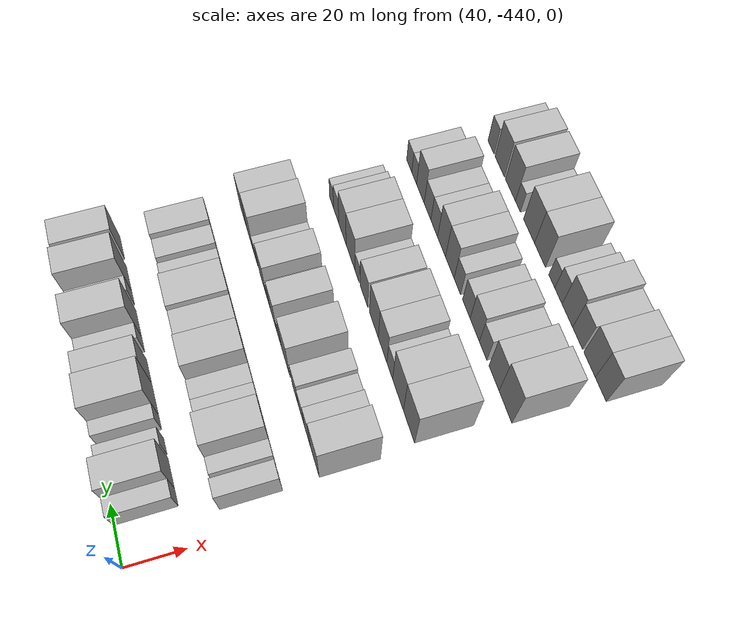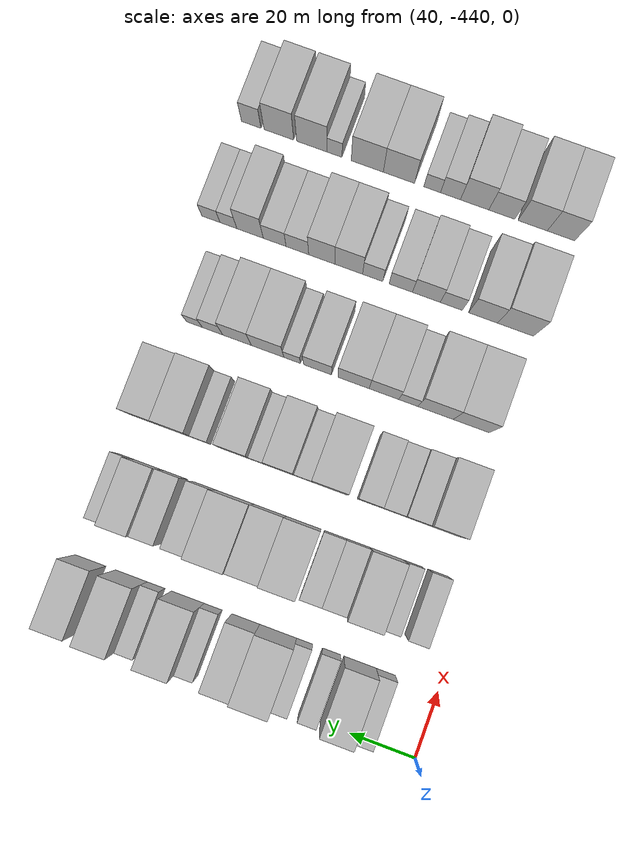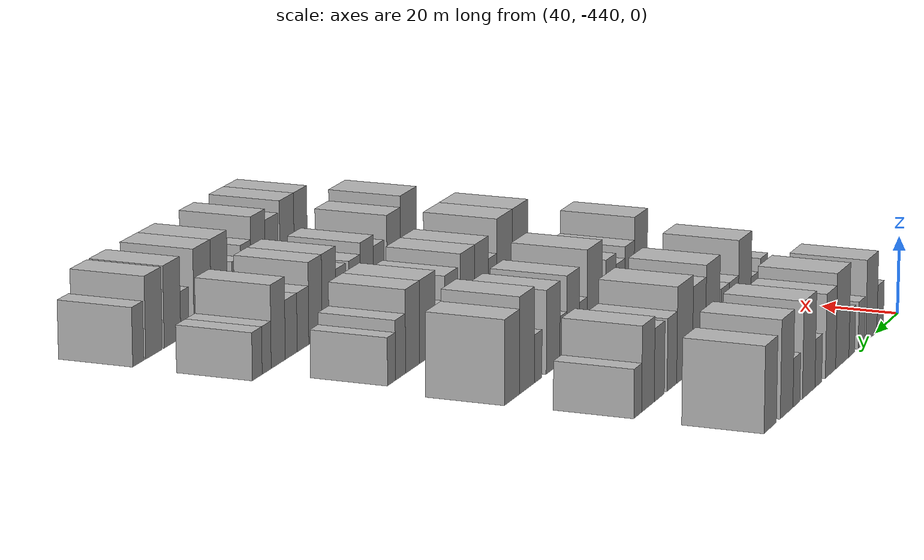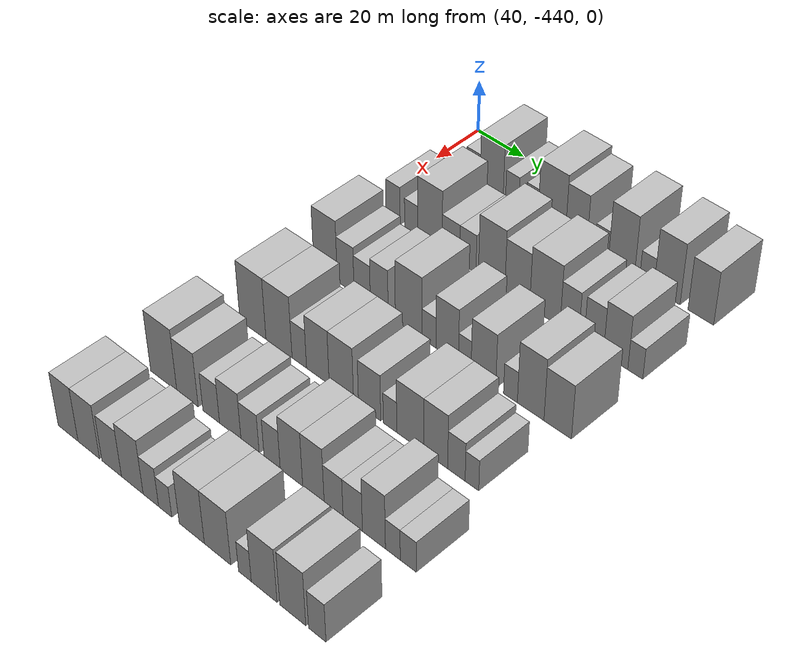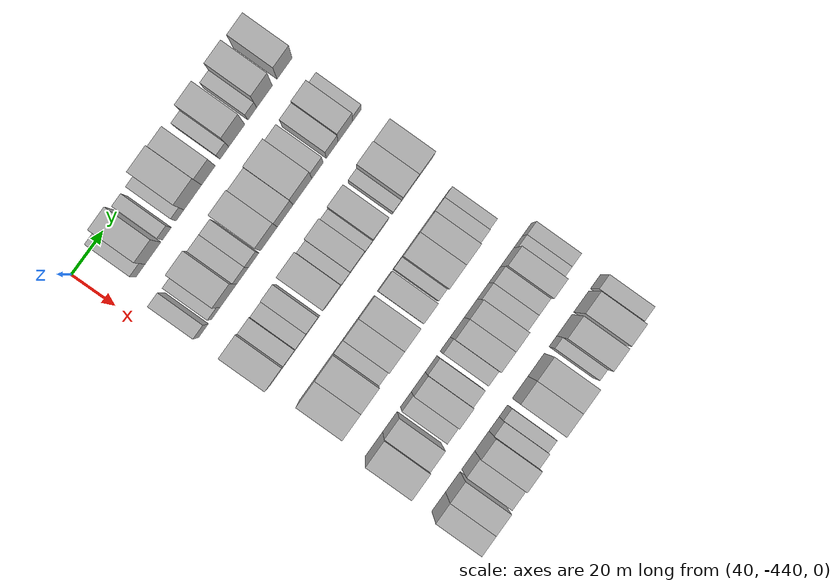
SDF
<sdf version="1.6">
 <world name="default">
  <model name="building_13">
   <static>1</static>
   <pose>50.0000 -423.7667 0 0.000000 0.000000 0.000000</pose>
   <link name="link">
    <pose>0 0 6.00 0 0 0</pose>
    <collision name="collision"><geometry><box><size>20.0000 5.8594 12.0000</size></box></geometry></collision>
    <visual name="visual">
     <cast_shadows>0</cast_shadows>
     <geometry><box><size>20.0000 5.8594 12.0000</size></box></geometry>
     <material>
      <script>
       <uri>model://HANNAS_wall/materials/scripts</uri>
       <uri>model://HANNAS_wall/materials/textures</uri>
       <name>vrc/HANNAS_wall</name>
      </script>
     </material>
    </visual>
   </link>
  </model>
  <model name="building_14">
   <static>1</static>
   <pose>50.0000 -415.8251 0 0.000000 0.000000 0.000000</pose>
   <link name="link">
    <pose>0 0 10.50 0 0 0</pose>
    <collision name="collision"><geometry><box><size>20.0000 10.0237 21.0000</size></box></geometry></collision>
    <visual name="visual">
     <cast_shadows>0</cast_shadows>
     <geometry><box><size>20.0000 10.0237 21.0000</size></box></geometry>
     <material>
      <script>
       <uri>model://HANNAS_wall/materials/scripts</uri>
       <uri>model://HANNAS_wall/materials/textures</uri>
       <name>vrc/HANNAS_wall</name>
      </script>
     </material>
    </visual>
   </link>
  </model>
  <model name="building_15">
   <static>1</static>
   <pose>50.0000 -406.9831 0 0.000000 0.000000 0.000000</pose>
   <link name="link">
    <pose>0 0 6.00 0 0 0</pose>
    <collision name="collision"><geometry><box><size>20.0000 5.6603 12.0000</size></box></geometry></collision>
    <visual name="visual">
     <cast_shadows>0</cast_shadows>
     <geometry><box><size>20.0000 5.6603 12.0000</size></box></geometry>
     <material>
      <script>
       <uri>model://HANNAS_wall/materials/scripts</uri>
       <uri>model://HANNAS_wall/materials/textures</uri>
       <name>vrc/HANNAS_wall</name>
      </script>
     </material>
    </visual>
   </link>
  </model>
  <model name="building_16">
   <static>1</static>
   <pose>50.0000 -398.6323 0 0.000000 0.000000 0.000000</pose>
   <link name="link">
    <pose>0 0 6.00 0 0 0</pose>
    <collision name="collision"><geometry><box><size>20.0000 5.0413 12.0000</size></box></geometry></collision>
    <visual name="visual">
     <cast_shadows>0</cast_shadows>
     <geometry><box><size>20.0000 5.0413 12.0000</size></box></geometry>
     <material>
      <script>
       <uri>model://HANNAS_wall/materials/scripts</uri>
       <uri>model://HANNAS_wall/materials/textures</uri>
       <name>vrc/HANNAS_wall</name>
      </script>
     </material>
    </visual>
   </link>
  </model>
  <model name="building_17">
   <static>1</static>
   <pose>50.0000 -390.4212 0 0.000000 0.000000 0.000000</pose>
   <link name="link">
    <pose>0 0 12.00 0 0 0</pose>
    <collision name="collision"><geometry><box><size>20.0000 11.3807 24.0000</size></box></geometry></collision>
    <visual name="visual">
     <cast_shadows>0</cast_shadows>
     <geometry><box><size>20.0000 11.3807 24.0000</size></box></geometry>
     <material>
      <script>
       <uri>model://HANNAS_wall/materials/scripts</uri>
       <uri>model://HANNAS_wall/materials/textures</uri>
       <name>vrc/HANNAS_wall</name>
      </script>
     </material>
    </visual>
   </link>
  </model>
  <model name="building_18">
   <static>1</static>
   <pose>50.0000 -380.3764 0 0.000000 0.000000 0.000000</pose>
   <link name="link">
    <pose>0 0 10.50 0 0 0</pose>
    <collision name="collision"><geometry><box><size>20.0000 8.7089 21.0000</size></box></geometry></collision>
    <visual name="visual">
     <cast_shadows>0</cast_shadows>
     <geometry><box><size>20.0000 8.7089 21.0000</size></box></geometry>
     <material>
      <script>
       <uri>model://HANNAS_wall/materials/scripts</uri>
       <uri>model://HANNAS_wall/materials/textures</uri>
       <name>vrc/HANNAS_wall</name>
      </script>
     </material>
    </visual>
   </link>
  </model>
  <model name="building_19">
   <static>1</static>
   <pose>50.0000 -370.2138 0 0.000000 0.000000 0.000000</pose>
   <link name="link">
    <pose>0 0 6.00 0 0 0</pose>
    <collision name="collision"><geometry><box><size>20.0000 5.6164 12.0000</size></box></geometry></collision>
    <visual name="visual">
     <cast_shadows>0</cast_shadows>
     <geometry><box><size>20.0000 5.6164 12.0000</size></box></geometry>
     <material>
      <script>
       <uri>model://HANNAS_wall/materials/scripts</uri>
       <uri>model://HANNAS_wall/materials/textures</uri>
       <name>vrc/HANNAS_wall</name>
      </script>
     </material>
    </visual>
   </link>
  </model>
  <model name="building_20">
   <static>1</static>
   <pose>50.0000 -362.2607 0 0.000000 0.000000 0.000000</pose>
   <link name="link">
    <pose>0 0 12.00 0 0 0</pose>
    <collision name="collision"><geometry><box><size>20.0000 10.2897 24.0000</size></box></geometry></collision>
    <visual name="visual">
     <cast_shadows>0</cast_shadows>
     <geometry><box><size>20.0000 10.2897 24.0000</size></box></geometry>
     <material>
      <script>
       <uri>model://HANNAS_wall/materials/scripts</uri>
       <uri>model://HANNAS_wall/materials/textures</uri>
       <name>vrc/HANNAS_wall</name>
      </script>
     </material>
    </visual>
   </link>
  </model>
  <model name="building_21">
   <static>1</static>
   <pose>50.0000 -352.3181 0 0.000000 0.000000 0.000000</pose>
   <link name="link">
    <pose>0 0 6.00 0 0 0</pose>
    <collision name="collision"><geometry><box><size>20.0000 5.5954 12.0000</size></box></geometry></collision>
    <visual name="visual">
     <cast_shadows>0</cast_shadows>
     <geometry><box><size>20.0000 5.5954 12.0000</size></box></geometry>
     <material>
      <script>
       <uri>model://HANNAS_wall/materials/scripts</uri>
       <uri>model://HANNAS_wall/materials/textures</uri>
       <name>vrc/HANNAS_wall</name>
      </script>
     </material>
    </visual>
   </link>
  </model>
  <model name="building_22">
   <static>1</static>
   <pose>50.0000 -344.5052 0 0.000000 0.000000 0.000000</pose>
   <link name="link">
    <pose>0 0 12.00 0 0 0</pose>
    <collision name="collision"><geometry><box><size>20.0000 10.0305 24.0000</size></box></geometry></collision>
    <visual name="visual">
     <cast_shadows>0</cast_shadows>
     <geometry><box><size>20.0000 10.0305 24.0000</size></box></geometry>
     <material>
      <script>
       <uri>model://HANNAS_wall/materials/scripts</uri>
       <uri>model://HANNAS_wall/materials/textures</uri>
       <name>vrc/HANNAS_wall</name>
      </script>
     </material>
    </visual>
   </link>
  </model>
  <model name="building_23">
   <static>1</static>
   <pose>50.0000 -331.6770 0 0.000000 0.000000 0.000000</pose>
   <link name="link">
    <pose>0 0 10.50 0 0 0</pose>
    <collision name="collision"><geometry><box><size>20.0000 9.6259 21.0000</size></box></geometry></collision>
    <visual name="visual">
     <cast_shadows>0</cast_shadows>
     <geometry><box><size>20.0000 9.6259 21.0000</size></box></geometry>
     <material>
      <script>
       <uri>model://HANNAS_wall/materials/scripts</uri>
       <uri>model://HANNAS_wall/materials/textures</uri>
       <name>vrc/HANNAS_wall</name>
      </script>
     </material>
    </visual>
   </link>
  </model>
  <model name="building_133">
   <static>1</static>
   <pose>82.0000 -428.3252 0 0.000000 0.000000 0.000000</pose>
   <link name="link">
    <pose>0 0 7.50 0 0 0</pose>
    <collision name="collision"><geometry><box><size>20.0000 6.1451 15.0000</size></box></geometry></collision>
    <visual name="visual">
     <cast_shadows>0</cast_shadows>
     <geometry><box><size>20.0000 6.1451 15.0000</size></box></geometry>
     <material>
      <script>
       <uri>model://HANNAS_wall/materials/scripts</uri>
       <uri>model://HANNAS_wall/materials/textures</uri>
       <name>vrc/HANNAS_wall</name>
      </script>
     </material>
    </visual>
   </link>
  </model>
  <model name="building_134">
   <static>1</static>
   <pose>82.0000 -420.4327 0 0.000000 0.000000 0.000000</pose>
   <link name="link">
    <pose>0 0 6.00 0 0 0</pose>
    <collision name="collision"><geometry><box><size>20.0000 5.6399 12.0000</size></box></geometry></collision>
    <visual name="visual">
     <cast_shadows>0</cast_shadows>
     <geometry><box><size>20.0000 5.6399 12.0000</size></box></geometry>
     <material>
      <script>
       <uri>model://HANNAS_wall/materials/scripts</uri>
       <uri>model://HANNAS_wall/materials/textures</uri>
       <name>vrc/HANNAS_wall</name>
      </script>
     </material>
    </visual>
   </link>
  </model>
  <model name="building_135">
   <static>1</static>
   <pose>82.0000 -412.3763 0 0.000000 0.000000 0.000000</pose>
   <link name="link">
    <pose>0 0 12.00 0 0 0</pose>
    <collision name="collision"><geometry><box><size>20.0000 10.4729 24.0000</size></box></geometry></collision>
    <visual name="visual">
     <cast_shadows>0</cast_shadows>
     <geometry><box><size>20.0000 10.4729 24.0000</size></box></geometry>
     <material>
      <script>
       <uri>model://HANNAS_wall/materials/scripts</uri>
       <uri>model://HANNAS_wall/materials/textures</uri>
       <name>vrc/HANNAS_wall</name>
      </script>
     </material>
    </visual>
   </link>
  </model>
  <model name="building_136">
   <static>1</static>
   <pose>82.0000 -403.4247 0 0.000000 0.000000 0.000000</pose>
   <link name="link">
    <pose>0 0 7.50 0 0 0</pose>
    <collision name="collision"><geometry><box><size>20.0000 7.4302 15.0000</size></box></geometry></collision>
    <visual name="visual">
     <cast_shadows>0</cast_shadows>
     <geometry><box><size>20.0000 7.4302 15.0000</size></box></geometry>
     <material>
      <script>
       <uri>model://HANNAS_wall/materials/scripts</uri>
       <uri>model://HANNAS_wall/materials/textures</uri>
       <name>vrc/HANNAS_wall</name>
      </script>
     </material>
    </visual>
   </link>
  </model>
  <model name="building_137">
   <static>1</static>
   <pose>82.0000 -396.3195 0 0.000000 0.000000 0.000000</pose>
   <link name="link">
    <pose>0 0 7.50 0 0 0</pose>
    <collision name="collision"><geometry><box><size>20.0000 6.7802 15.0000</size></box></geometry></collision>
    <visual name="visual">
     <cast_shadows>0</cast_shadows>
     <geometry><box><size>20.0000 6.7802 15.0000</size></box></geometry>
     <material>
      <script>
       <uri>model://HANNAS_wall/materials/scripts</uri>
       <uri>model://HANNAS_wall/materials/textures</uri>
       <name>vrc/HANNAS_wall</name>
      </script>
     </material>
    </visual>
   </link>
  </model>
  <model name="building_138">
   <static>1</static>
   <pose>82.0000 -386.5137 0 0.000000 0.000000 0.000000</pose>
   <link name="link">
    <pose>0 0 12.00 0 0 0</pose>
    <collision name="collision"><geometry><box><size>20.0000 10.8312 24.0000</size></box></geometry></collision>
    <visual name="visual">
     <cast_shadows>0</cast_shadows>
     <geometry><box><size>20.0000 10.8312 24.0000</size></box></geometry>
     <material>
      <script>
       <uri>model://HANNAS_wall/materials/scripts</uri>
       <uri>model://HANNAS_wall/materials/textures</uri>
       <name>vrc/HANNAS_wall</name>
      </script>
     </material>
    </visual>
   </link>
  </model>
  <model name="building_139">
   <static>1</static>
   <pose>82.0000 -376.0908 0 0.000000 0.000000 0.000000</pose>
   <link name="link">
    <pose>0 0 10.50 0 0 0</pose>
    <collision name="collision"><geometry><box><size>20.0000 10.0147 21.0000</size></box></geometry></collision>
    <visual name="visual">
     <cast_shadows>0</cast_shadows>
     <geometry><box><size>20.0000 10.0147 21.0000</size></box></geometry>
     <material>
      <script>
       <uri>model://HANNAS_wall/materials/scripts</uri>
       <uri>model://HANNAS_wall/materials/textures</uri>
       <name>vrc/HANNAS_wall</name>
      </script>
     </material>
    </visual>
   </link>
  </model>
  <model name="building_140">
   <static>1</static>
   <pose>82.0000 -365.0867 0 0.000000 0.000000 0.000000</pose>
   <link name="link">
    <pose>0 0 12.00 0 0 0</pose>
    <collision name="collision"><geometry><box><size>20.0000 11.9934 24.0000</size></box></geometry></collision>
    <visual name="visual">
     <cast_shadows>0</cast_shadows>
     <geometry><box><size>20.0000 11.9934 24.0000</size></box></geometry>
     <material>
      <script>
       <uri>model://HANNAS_wall/materials/scripts</uri>
       <uri>model://HANNAS_wall/materials/textures</uri>
       <name>vrc/HANNAS_wall</name>
      </script>
     </material>
    </visual>
   </link>
  </model>
  <model name="building_141">
   <static>1</static>
   <pose>82.0000 -355.4600 0 0.000000 0.000000 0.000000</pose>
   <link name="link">
    <pose>0 0 9.00 0 0 0</pose>
    <collision name="collision"><geometry><box><size>20.0000 7.2601 18.0000</size></box></geometry></collision>
    <visual name="visual">
     <cast_shadows>0</cast_shadows>
     <geometry><box><size>20.0000 7.2601 18.0000</size></box></geometry>
     <material>
      <script>
       <uri>model://HANNAS_wall/materials/scripts</uri>
       <uri>model://HANNAS_wall/materials/textures</uri>
       <name>vrc/HANNAS_wall</name>
      </script>
     </material>
    </visual>
   </link>
  </model>
  <model name="building_142">
   <static>1</static>
   <pose>82.0000 -346.1117 0 0.000000 0.000000 0.000000</pose>
   <link name="link">
    <pose>0 0 9.00 0 0 0</pose>
    <collision name="collision"><geometry><box><size>20.0000 7.4363 18.0000</size></box></geometry></collision>
    <visual name="visual">
     <cast_shadows>0</cast_shadows>
     <geometry><box><size>20.0000 7.4363 18.0000</size></box></geometry>
     <material>
      <script>
       <uri>model://HANNAS_wall/materials/scripts</uri>
       <uri>model://HANNAS_wall/materials/textures</uri>
       <name>vrc/HANNAS_wall</name>
      </script>
     </material>
    </visual>
   </link>
  </model>
  <model name="building_143">
   <static>1</static>
   <pose>82.0000 -337.8104 0 0.000000 0.000000 0.000000</pose>
   <link name="link">
    <pose>0 0 10.50 0 0 0</pose>
    <collision name="collision"><geometry><box><size>20.0000 9.1663 21.0000</size></box></geometry></collision>
    <visual name="visual">
     <cast_shadows>0</cast_shadows>
     <geometry><box><size>20.0000 9.1663 21.0000</size></box></geometry>
     <material>
      <script>
       <uri>model://HANNAS_wall/materials/scripts</uri>
       <uri>model://HANNAS_wall/materials/textures</uri>
       <name>vrc/HANNAS_wall</name>
      </script>
     </material>
    </visual>
   </link>
  </model>
  <model name="building_144">
   <static>1</static>
   <pose>82.0000 -330.4458 0 0.000000 0.000000 0.000000</pose>
   <link name="link">
    <pose>0 0 6.00 0 0 0</pose>
    <collision name="collision"><geometry><box><size>20.0000 5.5631 12.0000</size></box></geometry></collision>
    <visual name="visual">
     <cast_shadows>0</cast_shadows>
     <geometry><box><size>20.0000 5.5631 12.0000</size></box></geometry>
     <material>
      <script>
       <uri>model://HANNAS_wall/materials/scripts</uri>
       <uri>model://HANNAS_wall/materials/textures</uri>
       <name>vrc/HANNAS_wall</name>
      </script>
     </material>
    </visual>
   </link>
  </model>
  <model name="building_257">
   <static>1</static>
   <pose>114.0000 -425.5355 0 0.000000 0.000000 0.000000</pose>
   <link name="link">
    <pose>0 0 12.00 0 0 0</pose>
    <collision name="collision"><geometry><box><size>20.0000 10.2717 24.0000</size></box></geometry></collision>
    <visual name="visual">
     <cast_shadows>0</cast_shadows>
     <geometry><box><size>20.0000 10.2717 24.0000</size></box></geometry>
     <material>
      <script>
       <uri>model://HANNAS_wall/materials/scripts</uri>
       <uri>model://HANNAS_wall/materials/textures</uri>
       <name>vrc/HANNAS_wall</name>
      </script>
     </material>
    </visual>
   </link>
  </model>
  <model name="building_258">
   <static>1</static>
   <pose>114.0000 -416.7930 0 0.000000 0.000000 0.000000</pose>
   <link name="link">
    <pose>0 0 9.00 0 0 0</pose>
    <collision name="collision"><geometry><box><size>20.0000 7.2132 18.0000</size></box></geometry></collision>
    <visual name="visual">
     <cast_shadows>0</cast_shadows>
     <geometry><box><size>20.0000 7.2132 18.0000</size></box></geometry>
     <material>
      <script>
       <uri>model://HANNAS_wall/materials/scripts</uri>
       <uri>model://HANNAS_wall/materials/textures</uri>
       <name>vrc/HANNAS_wall</name>
      </script>
     </material>
    </visual>
   </link>
  </model>
  <model name="building_259">
   <static>1</static>
   <pose>114.0000 -409.7258 0 0.000000 0.000000 0.000000</pose>
   <link name="link">
    <pose>0 0 7.50 0 0 0</pose>
    <collision name="collision"><geometry><box><size>20.0000 6.9212 15.0000</size></box></geometry></collision>
    <visual name="visual">
     <cast_shadows>0</cast_shadows>
     <geometry><box><size>20.0000 6.9212 15.0000</size></box></geometry>
     <material>
      <script>
       <uri>model://HANNAS_wall/materials/scripts</uri>
       <uri>model://HANNAS_wall/materials/textures</uri>
       <name>vrc/HANNAS_wall</name>
      </script>
     </material>
    </visual>
   </link>
  </model>
  <model name="building_260">
   <static>1</static>
   <pose>114.0000 -402.5256 0 0.000000 0.000000 0.000000</pose>
   <link name="link">
    <pose>0 0 9.00 0 0 0</pose>
    <collision name="collision"><geometry><box><size>20.0000 7.4793 18.0000</size></box></geometry></collision>
    <visual name="visual">
     <cast_shadows>0</cast_shadows>
     <geometry><box><size>20.0000 7.4793 18.0000</size></box></geometry>
     <material>
      <script>
       <uri>model://HANNAS_wall/materials/scripts</uri>
       <uri>model://HANNAS_wall/materials/textures</uri>
       <name>vrc/HANNAS_wall</name>
      </script>
     </material>
    </visual>
   </link>
  </model>
  <model name="building_261">
   <static>1</static>
   <pose>114.0000 -390.3199 0 0.000000 0.000000 0.000000</pose>
   <link name="link">
    <pose>0 0 12.00 0 0 0</pose>
    <collision name="collision"><geometry><box><size>20.0000 10.9321 24.0000</size></box></geometry></collision>
    <visual name="visual">
     <cast_shadows>0</cast_shadows>
     <geometry><box><size>20.0000 10.9321 24.0000</size></box></geometry>
     <material>
      <script>
       <uri>model://HANNAS_wall/materials/scripts</uri>
       <uri>model://HANNAS_wall/materials/textures</uri>
       <name>vrc/HANNAS_wall</name>
      </script>
     </material>
    </visual>
   </link>
  </model>
  <model name="building_262">
   <static>1</static>
   <pose>114.0000 -382.0272 0 0.000000 0.000000 0.000000</pose>
   <link name="link">
    <pose>0 0 6.00 0 0 0</pose>
    <collision name="collision"><geometry><box><size>20.0000 5.6532 12.0000</size></box></geometry></collision>
    <visual name="visual">
     <cast_shadows>0</cast_shadows>
     <geometry><box><size>20.0000 5.6532 12.0000</size></box></geometry>
     <material>
      <script>
       <uri>model://HANNAS_wall/materials/scripts</uri>
       <uri>model://HANNAS_wall/materials/textures</uri>
       <name>vrc/HANNAS_wall</name>
      </script>
     </material>
    </visual>
   </link>
  </model>
  <model name="building_263">
   <static>1</static>
   <pose>114.0000 -374.6960 0 0.000000 0.000000 0.000000</pose>
   <link name="link">
    <pose>0 0 10.50 0 0 0</pose>
    <collision name="collision"><geometry><box><size>20.0000 9.0093 21.0000</size></box></geometry></collision>
    <visual name="visual">
     <cast_shadows>0</cast_shadows>
     <geometry><box><size>20.0000 9.0093 21.0000</size></box></geometry>
     <material>
      <script>
       <uri>model://HANNAS_wall/materials/scripts</uri>
       <uri>model://HANNAS_wall/materials/textures</uri>
       <name>vrc/HANNAS_wall</name>
      </script>
     </material>
    </visual>
   </link>
  </model>
  <model name="building_264">
   <static>1</static>
   <pose>114.0000 -367.6970 0 0.000000 0.000000 0.000000</pose>
   <link name="link">
    <pose>0 0 6.00 0 0 0</pose>
    <collision name="collision"><geometry><box><size>20.0000 4.9887 12.0000</size></box></geometry></collision>
    <visual name="visual">
     <cast_shadows>0</cast_shadows>
     <geometry><box><size>20.0000 4.9887 12.0000</size></box></geometry>
     <material>
      <script>
       <uri>model://HANNAS_wall/materials/scripts</uri>
       <uri>model://HANNAS_wall/materials/textures</uri>
       <name>vrc/HANNAS_wall</name>
      </script>
     </material>
    </visual>
   </link>
  </model>
  <model name="building_265">
   <static>1</static>
   <pose>114.0000 -360.3869 0 0.000000 0.000000 0.000000</pose>
   <link name="link">
    <pose>0 0 10.50 0 0 0</pose>
    <collision name="collision"><geometry><box><size>20.0000 9.6316 21.0000</size></box></geometry></collision>
    <visual name="visual">
     <cast_shadows>0</cast_shadows>
     <geometry><box><size>20.0000 9.6316 21.0000</size></box></geometry>
     <material>
      <script>
       <uri>model://HANNAS_wall/materials/scripts</uri>
       <uri>model://HANNAS_wall/materials/textures</uri>
       <name>vrc/HANNAS_wall</name>
      </script>
     </material>
    </visual>
   </link>
  </model>
  <model name="building_266">
   <static>1</static>
   <pose>114.0000 -349.9247 0 0.000000 0.000000 0.000000</pose>
   <link name="link">
    <pose>0 0 6.00 0 0 0</pose>
    <collision name="collision"><geometry><box><size>20.0000 5.2928 12.0000</size></box></geometry></collision>
    <visual name="visual">
     <cast_shadows>0</cast_shadows>
     <geometry><box><size>20.0000 5.2928 12.0000</size></box></geometry>
     <material>
      <script>
       <uri>model://HANNAS_wall/materials/scripts</uri>
       <uri>model://HANNAS_wall/materials/textures</uri>
       <name>vrc/HANNAS_wall</name>
      </script>
     </material>
    </visual>
   </link>
  </model>
  <model name="building_267">
   <static>1</static>
   <pose>114.0000 -342.2519 0 0.000000 0.000000 0.000000</pose>
   <link name="link">
    <pose>0 0 12.00 0 0 0</pose>
    <collision name="collision"><geometry><box><size>20.0000 10.0527 24.0000</size></box></geometry></collision>
    <visual name="visual">
     <cast_shadows>0</cast_shadows>
     <geometry><box><size>20.0000 10.0527 24.0000</size></box></geometry>
     <material>
      <script>
       <uri>model://HANNAS_wall/materials/scripts</uri>
       <uri>model://HANNAS_wall/materials/textures</uri>
       <name>vrc/HANNAS_wall</name>
      </script>
     </material>
    </visual>
   </link>
  </model>
  <model name="building_268">
   <static>1</static>
   <pose>114.0000 -332.1342 0 0.000000 0.000000 0.000000</pose>
   <link name="link">
    <pose>0 0 10.50 0 0 0</pose>
    <collision name="collision"><geometry><box><size>20.0000 10.1827 21.0000</size></box></geometry></collision>
    <visual name="visual">
     <cast_shadows>0</cast_shadows>
     <geometry><box><size>20.0000 10.1827 21.0000</size></box></geometry>
     <material>
      <script>
       <uri>model://HANNAS_wall/materials/scripts</uri>
       <uri>model://HANNAS_wall/materials/textures</uri>
       <name>vrc/HANNAS_wall</name>
      </script>
     </material>
    </visual>
   </link>
  </model>
  <model name="building_377">
   <static>1</static>
   <pose>146.0000 -423.1779 0 0.000000 0.000000 0.000000</pose>
   <link name="link">
    <pose>0 0 12.00 0 0 0</pose>
    <collision name="collision"><geometry><box><size>20.0000 11.3460 24.0000</size></box></geometry></collision>
    <visual name="visual">
     <cast_shadows>0</cast_shadows>
     <geometry><box><size>20.0000 11.3460 24.0000</size></box></geometry>
     <material>
      <script>
       <uri>model://HANNAS_wall/materials/scripts</uri>
       <uri>model://HANNAS_wall/materials/textures</uri>
       <name>vrc/HANNAS_wall</name>
      </script>
     </material>
    </visual>
   </link>
  </model>
  <model name="building_378">
   <static>1</static>
   <pose>146.0000 -411.9239 0 0.000000 0.000000 0.000000</pose>
   <link name="link">
    <pose>0 0 12.00 0 0 0</pose>
    <collision name="collision"><geometry><box><size>20.0000 11.1620 24.0000</size></box></geometry></collision>
    <visual name="visual">
     <cast_shadows>0</cast_shadows>
     <geometry><box><size>20.0000 11.1620 24.0000</size></box></geometry>
     <material>
      <script>
       <uri>model://HANNAS_wall/materials/scripts</uri>
       <uri>model://HANNAS_wall/materials/textures</uri>
       <name>vrc/HANNAS_wall</name>
      </script>
     </material>
    </visual>
   </link>
  </model>
  <model name="building_379">
   <static>1</static>
   <pose>146.0000 -403.2958 0 0.000000 0.000000 0.000000</pose>
   <link name="link">
    <pose>0 0 7.50 0 0 0</pose>
    <collision name="collision"><geometry><box><size>20.0000 6.0943 15.0000</size></box></geometry></collision>
    <visual name="visual">
     <cast_shadows>0</cast_shadows>
     <geometry><box><size>20.0000 6.0943 15.0000</size></box></geometry>
     <material>
      <script>
       <uri>model://HANNAS_wall/materials/scripts</uri>
       <uri>model://HANNAS_wall/materials/textures</uri>
       <name>vrc/HANNAS_wall</name>
      </script>
     </material>
    </visual>
   </link>
  </model>
  <model name="building_380">
   <static>1</static>
   <pose>146.0000 -395.5533 0 0.000000 0.000000 0.000000</pose>
   <link name="link">
    <pose>0 0 10.50 0 0 0</pose>
    <collision name="collision"><geometry><box><size>20.0000 9.3907 21.0000</size></box></geometry></collision>
    <visual name="visual">
     <cast_shadows>0</cast_shadows>
     <geometry><box><size>20.0000 9.3907 21.0000</size></box></geometry>
     <material>
      <script>
       <uri>model://HANNAS_wall/materials/scripts</uri>
       <uri>model://HANNAS_wall/materials/textures</uri>
       <name>vrc/HANNAS_wall</name>
      </script>
     </material>
    </visual>
   </link>
  </model>
  <model name="building_381">
   <static>1</static>
   <pose>146.0000 -385.8842 0 0.000000 0.000000 0.000000</pose>
   <link name="link">
    <pose>0 0 10.50 0 0 0</pose>
    <collision name="collision"><geometry><box><size>20.0000 9.9476 21.0000</size></box></geometry></collision>
    <visual name="visual">
     <cast_shadows>0</cast_shadows>
     <geometry><box><size>20.0000 9.9476 21.0000</size></box></geometry>
     <material>
      <script>
       <uri>model://HANNAS_wall/materials/scripts</uri>
       <uri>model://HANNAS_wall/materials/textures</uri>
       <name>vrc/HANNAS_wall</name>
      </script>
     </material>
    </visual>
   </link>
  </model>
  <model name="building_382">
   <static>1</static>
   <pose>146.0000 -374.4800 0 0.000000 0.000000 0.000000</pose>
   <link name="link">
    <pose>0 0 9.00 0 0 0</pose>
    <collision name="collision"><geometry><box><size>20.0000 8.8607 18.0000</size></box></geometry></collision>
    <visual name="visual">
     <cast_shadows>0</cast_shadows>
     <geometry><box><size>20.0000 8.8607 18.0000</size></box></geometry>
     <material>
      <script>
       <uri>model://HANNAS_wall/materials/scripts</uri>
       <uri>model://HANNAS_wall/materials/textures</uri>
       <name>vrc/HANNAS_wall</name>
      </script>
     </material>
    </visual>
   </link>
  </model>
  <model name="building_383">
   <static>1</static>
   <pose>146.0000 -366.3963 0 0.000000 0.000000 0.000000</pose>
   <link name="link">
    <pose>0 0 6.00 0 0 0</pose>
    <collision name="collision"><geometry><box><size>20.0000 5.3067 12.0000</size></box></geometry></collision>
    <visual name="visual">
     <cast_shadows>0</cast_shadows>
     <geometry><box><size>20.0000 5.3067 12.0000</size></box></geometry>
     <material>
      <script>
       <uri>model://HANNAS_wall/materials/scripts</uri>
       <uri>model://HANNAS_wall/materials/textures</uri>
       <name>vrc/HANNAS_wall</name>
      </script>
     </material>
    </visual>
   </link>
  </model>
  <model name="building_384">
   <static>1</static>
   <pose>146.0000 -358.5133 0 0.000000 0.000000 0.000000</pose>
   <link name="link">
    <pose>0 0 10.50 0 0 0</pose>
    <collision name="collision"><geometry><box><size>20.0000 10.4593 21.0000</size></box></geometry></collision>
    <visual name="visual">
     <cast_shadows>0</cast_shadows>
     <geometry><box><size>20.0000 10.4593 21.0000</size></box></geometry>
     <material>
      <script>
       <uri>model://HANNAS_wall/materials/scripts</uri>
       <uri>model://HANNAS_wall/materials/textures</uri>
       <name>vrc/HANNAS_wall</name>
      </script>
     </material>
    </visual>
   </link>
  </model>
  <model name="building_385">
   <static>1</static>
   <pose>146.0000 -348.7199 0 0.000000 0.000000 0.000000</pose>
   <link name="link">
    <pose>0 0 10.50 0 0 0</pose>
    <collision name="collision"><geometry><box><size>20.0000 9.1275 21.0000</size></box></geometry></collision>
    <visual name="visual">
     <cast_shadows>0</cast_shadows>
     <geometry><box><size>20.0000 9.1275 21.0000</size></box></geometry>
     <material>
      <script>
       <uri>model://HANNAS_wall/materials/scripts</uri>
       <uri>model://HANNAS_wall/materials/textures</uri>
       <name>vrc/HANNAS_wall</name>
      </script>
     </material>
    </visual>
   </link>
  </model>
  <model name="building_386">
   <static>1</static>
   <pose>146.0000 -340.8869 0 0.000000 0.000000 0.000000</pose>
   <link name="link">
    <pose>0 0 7.50 0 0 0</pose>
    <collision name="collision"><geometry><box><size>20.0000 6.5385 15.0000</size></box></geometry></collision>
    <visual name="visual">
     <cast_shadows>0</cast_shadows>
     <geometry><box><size>20.0000 6.5385 15.0000</size></box></geometry>
     <material>
      <script>
       <uri>model://HANNAS_wall/materials/scripts</uri>
       <uri>model://HANNAS_wall/materials/textures</uri>
       <name>vrc/HANNAS_wall</name>
      </script>
     </material>
    </visual>
   </link>
  </model>
  <model name="building_387">
   <static>1</static>
   <pose>146.0000 -335.0943 0 0.000000 0.000000 0.000000</pose>
   <link name="link">
    <pose>0 0 6.00 0 0 0</pose>
    <collision name="collision"><geometry><box><size>20.0000 5.0469 12.0000</size></box></geometry></collision>
    <visual name="visual">
     <cast_shadows>0</cast_shadows>
     <geometry><box><size>20.0000 5.0469 12.0000</size></box></geometry>
     <material>
      <script>
       <uri>model://HANNAS_wall/materials/scripts</uri>
       <uri>model://HANNAS_wall/materials/textures</uri>
       <name>vrc/HANNAS_wall</name>
      </script>
     </material>
    </visual>
   </link>
  </model>
  <model name="building_495">
   <static>1</static>
   <pose>178.0000 -426.0006 0 0.000000 0.000000 0.000000</pose>
   <link name="link">
    <pose>0 0 12.00 0 0 0</pose>
    <collision name="collision"><geometry><box><size>20.0000 11.4582 24.0000</size></box></geometry></collision>
    <visual name="visual">
     <cast_shadows>0</cast_shadows>
     <geometry><box><size>20.0000 11.4582 24.0000</size></box></geometry>
     <material>
      <script>
       <uri>model://HANNAS_wall/materials/scripts</uri>
       <uri>model://HANNAS_wall/materials/textures</uri>
       <name>vrc/HANNAS_wall</name>
      </script>
     </material>
    </visual>
   </link>
  </model>
  <model name="building_496">
   <static>1</static>
   <pose>178.0000 -415.6518 0 0.000000 0.000000 0.000000</pose>
   <link name="link">
    <pose>0 0 10.50 0 0 0</pose>
    <collision name="collision"><geometry><box><size>20.0000 9.2394 21.0000</size></box></geometry></collision>
    <visual name="visual">
     <cast_shadows>0</cast_shadows>
     <geometry><box><size>20.0000 9.2394 21.0000</size></box></geometry>
     <material>
      <script>
       <uri>model://HANNAS_wall/materials/scripts</uri>
       <uri>model://HANNAS_wall/materials/textures</uri>
       <name>vrc/HANNAS_wall</name>
      </script>
     </material>
    </visual>
   </link>
  </model>
  <model name="building_497">
   <static>1</static>
   <pose>178.0000 -405.5047 0 0.000000 0.000000 0.000000</pose>
   <link name="link">
    <pose>0 0 7.50 0 0 0</pose>
    <collision name="collision"><geometry><box><size>20.0000 7.0547 15.0000</size></box></geometry></collision>
    <visual name="visual">
     <cast_shadows>0</cast_shadows>
     <geometry><box><size>20.0000 7.0547 15.0000</size></box></geometry>
     <material>
      <script>
       <uri>model://HANNAS_wall/materials/scripts</uri>
       <uri>model://HANNAS_wall/materials/textures</uri>
       <name>vrc/HANNAS_wall</name>
      </script>
     </material>
    </visual>
   </link>
  </model>
  <model name="building_498">
   <static>1</static>
   <pose>178.0000 -397.5121 0 0.000000 0.000000 0.000000</pose>
   <link name="link">
    <pose>0 0 9.00 0 0 0</pose>
    <collision name="collision"><geometry><box><size>20.0000 8.9306 18.0000</size></box></geometry></collision>
    <visual name="visual">
     <cast_shadows>0</cast_shadows>
     <geometry><box><size>20.0000 8.9306 18.0000</size></box></geometry>
     <material>
      <script>
       <uri>model://HANNAS_wall/materials/scripts</uri>
       <uri>model://HANNAS_wall/materials/textures</uri>
       <name>vrc/HANNAS_wall</name>
      </script>
     </material>
    </visual>
   </link>
  </model>
  <model name="building_499">
   <static>1</static>
   <pose>178.0000 -389.3078 0 0.000000 0.000000 0.000000</pose>
   <link name="link">
    <pose>0 0 7.50 0 0 0</pose>
    <collision name="collision"><geometry><box><size>20.0000 7.4780 15.0000</size></box></geometry></collision>
    <visual name="visual">
     <cast_shadows>0</cast_shadows>
     <geometry><box><size>20.0000 7.4780 15.0000</size></box></geometry>
     <material>
      <script>
       <uri>model://HANNAS_wall/materials/scripts</uri>
       <uri>model://HANNAS_wall/materials/textures</uri>
       <name>vrc/HANNAS_wall</name>
      </script>
     </material>
    </visual>
   </link>
  </model>
  <model name="building_500">
   <static>1</static>
   <pose>178.0000 -380.3166 0 0.000000 0.000000 0.000000</pose>
   <link name="link">
    <pose>0 0 7.50 0 0 0</pose>
    <collision name="collision"><geometry><box><size>20.0000 6.5044 15.0000</size></box></geometry></collision>
    <visual name="visual">
     <cast_shadows>0</cast_shadows>
     <geometry><box><size>20.0000 6.5044 15.0000</size></box></geometry>
     <material>
      <script>
       <uri>model://HANNAS_wall/materials/scripts</uri>
       <uri>model://HANNAS_wall/materials/textures</uri>
       <name>vrc/HANNAS_wall</name>
      </script>
     </material>
    </visual>
   </link>
  </model>
  <model name="building_501">
   <static>1</static>
   <pose>178.0000 -372.5946 0 0.000000 0.000000 0.000000</pose>
   <link name="link">
    <pose>0 0 10.50 0 0 0</pose>
    <collision name="collision"><geometry><box><size>20.0000 8.9397 21.0000</size></box></geometry></collision>
    <visual name="visual">
     <cast_shadows>0</cast_shadows>
     <geometry><box><size>20.0000 8.9397 21.0000</size></box></geometry>
     <material>
      <script>
       <uri>model://HANNAS_wall/materials/scripts</uri>
       <uri>model://HANNAS_wall/materials/textures</uri>
       <name>vrc/HANNAS_wall</name>
      </script>
     </material>
    </visual>
   </link>
  </model>
  <model name="building_502">
   <static>1</static>
   <pose>178.0000 -363.9192 0 0.000000 0.000000 0.000000</pose>
   <link name="link">
    <pose>0 0 10.50 0 0 0</pose>
    <collision name="collision"><geometry><box><size>20.0000 8.4110 21.0000</size></box></geometry></collision>
    <visual name="visual">
     <cast_shadows>0</cast_shadows>
     <geometry><box><size>20.0000 8.4110 21.0000</size></box></geometry>
     <material>
      <script>
       <uri>model://HANNAS_wall/materials/scripts</uri>
       <uri>model://HANNAS_wall/materials/textures</uri>
       <name>vrc/HANNAS_wall</name>
      </script>
     </material>
    </visual>
   </link>
  </model>
  <model name="building_503">
   <static>1</static>
   <pose>178.0000 -356.0709 0 0.000000 0.000000 0.000000</pose>
   <link name="link">
    <pose>0 0 7.50 0 0 0</pose>
    <collision name="collision"><geometry><box><size>20.0000 7.2857 15.0000</size></box></geometry></collision>
    <visual name="visual">
     <cast_shadows>0</cast_shadows>
     <geometry><box><size>20.0000 7.2857 15.0000</size></box></geometry>
     <material>
      <script>
       <uri>model://HANNAS_wall/materials/scripts</uri>
       <uri>model://HANNAS_wall/materials/textures</uri>
       <name>vrc/HANNAS_wall</name>
      </script>
     </material>
    </visual>
   </link>
  </model>
  <model name="building_504">
   <static>1</static>
   <pose>178.0000 -348.7418 0 0.000000 0.000000 0.000000</pose>
   <link name="link">
    <pose>0 0 7.50 0 0 0</pose>
    <collision name="collision"><geometry><box><size>20.0000 7.3725 15.0000</size></box></geometry></collision>
    <visual name="visual">
     <cast_shadows>0</cast_shadows>
     <geometry><box><size>20.0000 7.3725 15.0000</size></box></geometry>
     <material>
      <script>
       <uri>model://HANNAS_wall/materials/scripts</uri>
       <uri>model://HANNAS_wall/materials/textures</uri>
       <name>vrc/HANNAS_wall</name>
      </script>
     </material>
    </visual>
   </link>
  </model>
  <model name="building_505">
   <static>1</static>
   <pose>178.0000 -340.7576 0 0.000000 0.000000 0.000000</pose>
   <link name="link">
    <pose>0 0 10.50 0 0 0</pose>
    <collision name="collision"><geometry><box><size>20.0000 8.5959 21.0000</size></box></geometry></collision>
    <visual name="visual">
     <cast_shadows>0</cast_shadows>
     <geometry><box><size>20.0000 8.5959 21.0000</size></box></geometry>
     <material>
      <script>
       <uri>model://HANNAS_wall/materials/scripts</uri>
       <uri>model://HANNAS_wall/materials/textures</uri>
       <name>vrc/HANNAS_wall</name>
      </script>
     </material>
    </visual>
   </link>
  </model>
  <model name="building_506">
   <static>1</static>
   <pose>178.0000 -333.7283 0 0.000000 0.000000 0.000000</pose>
   <link name="link">
    <pose>0 0 6.00 0 0 0</pose>
    <collision name="collision"><geometry><box><size>20.0000 5.4627 12.0000</size></box></geometry></collision>
    <visual name="visual">
     <cast_shadows>0</cast_shadows>
     <geometry><box><size>20.0000 5.4627 12.0000</size></box></geometry>
     <material>
      <script>
       <uri>model://HANNAS_wall/materials/scripts</uri>
       <uri>model://HANNAS_wall/materials/textures</uri>
       <name>vrc/HANNAS_wall</name>
      </script>
     </material>
    </visual>
   </link>
  </model>
  <model name="building_507">
   <static>1</static>
   <pose>178.0000 -328.0592 0 0.000000 0.000000 0.000000</pose>
   <link name="link">
    <pose>0 0 6.00 0 0 0</pose>
    <collision name="collision"><geometry><box><size>20.0000 5.8753 12.0000</size></box></geometry></collision>
    <visual name="visual">
     <cast_shadows>0</cast_shadows>
     <geometry><box><size>20.0000 5.8753 12.0000</size></box></geometry>
     <material>
      <script>
       <uri>model://HANNAS_wall/materials/scripts</uri>
       <uri>model://HANNAS_wall/materials/textures</uri>
       <name>vrc/HANNAS_wall</name>
      </script>
     </material>
    </visual>
   </link>
  </model>
  <model name="building_609">
   <static>1</static>
   <pose>210.0000 -429.4342 0 0.000000 0.000000 0.000000</pose>
   <link name="link">
    <pose>0 0 10.50 0 0 0</pose>
    <collision name="collision"><geometry><box><size>20.0000 8.8086 21.0000</size></box></geometry></collision>
    <visual name="visual">
     <cast_shadows>0</cast_shadows>
     <geometry><box><size>20.0000 8.8086 21.0000</size></box></geometry>
     <material>
      <script>
       <uri>model://HANNAS_wall/materials/scripts</uri>
       <uri>model://HANNAS_wall/materials/textures</uri>
       <name>vrc/HANNAS_wall</name>
      </script>
     </material>
    </visual>
   </link>
  </model>
  <model name="building_610">
   <static>1</static>
   <pose>210.0000 -420.3259 0 0.000000 0.000000 0.000000</pose>
   <link name="link">
    <pose>0 0 10.50 0 0 0</pose>
    <collision name="collision"><geometry><box><size>20.0000 9.4080 21.0000</size></box></geometry></collision>
    <visual name="visual">
     <cast_shadows>0</cast_shadows>
     <geometry><box><size>20.0000 9.4080 21.0000</size></box></geometry>
     <material>
      <script>
       <uri>model://HANNAS_wall/materials/scripts</uri>
       <uri>model://HANNAS_wall/materials/textures</uri>
       <name>vrc/HANNAS_wall</name>
      </script>
     </material>
    </visual>
   </link>
  </model>
  <model name="building_611">
   <static>1</static>
   <pose>210.0000 -410.4246 0 0.000000 0.000000 0.000000</pose>
   <link name="link">
    <pose>0 0 9.00 0 0 0</pose>
    <collision name="collision"><geometry><box><size>20.0000 8.3947 18.0000</size></box></geometry></collision>
    <visual name="visual">
     <cast_shadows>0</cast_shadows>
     <geometry><box><size>20.0000 8.3947 18.0000</size></box></geometry>
     <material>
      <script>
       <uri>model://HANNAS_wall/materials/scripts</uri>
       <uri>model://HANNAS_wall/materials/textures</uri>
       <name>vrc/HANNAS_wall</name>
      </script>
     </material>
    </visual>
   </link>
  </model>
  <model name="building_612">
   <static>1</static>
   <pose>210.0000 -401.6469 0 0.000000 0.000000 0.000000</pose>
   <link name="link">
    <pose>0 0 10.50 0 0 0</pose>
    <collision name="collision"><geometry><box><size>20.0000 9.1608 21.0000</size></box></geometry></collision>
    <visual name="visual">
     <cast_shadows>0</cast_shadows>
     <geometry><box><size>20.0000 9.1608 21.0000</size></box></geometry>
     <material>
      <script>
       <uri>model://HANNAS_wall/materials/scripts</uri>
       <uri>model://HANNAS_wall/materials/textures</uri>
       <name>vrc/HANNAS_wall</name>
      </script>
     </material>
    </visual>
   </link>
  </model>
  <model name="building_613">
   <static>1</static>
   <pose>210.0000 -393.8513 0 0.000000 0.000000 0.000000</pose>
   <link name="link">
    <pose>0 0 7.50 0 0 0</pose>
    <collision name="collision"><geometry><box><size>20.0000 6.4304 15.0000</size></box></geometry></collision>
    <visual name="visual">
     <cast_shadows>0</cast_shadows>
     <geometry><box><size>20.0000 6.4304 15.0000</size></box></geometry>
     <material>
      <script>
       <uri>model://HANNAS_wall/materials/scripts</uri>
       <uri>model://HANNAS_wall/materials/textures</uri>
       <name>vrc/HANNAS_wall</name>
      </script>
     </material>
    </visual>
   </link>
  </model>
  <model name="building_614">
   <static>1</static>
   <pose>210.0000 -387.9311 0 0.000000 0.000000 0.000000</pose>
   <link name="link">
    <pose>0 0 6.00 0 0 0</pose>
    <collision name="collision"><geometry><box><size>20.0000 5.4099 12.0000</size></box></geometry></collision>
    <visual name="visual">
     <cast_shadows>0</cast_shadows>
     <geometry><box><size>20.0000 5.4099 12.0000</size></box></geometry>
     <material>
      <script>
       <uri>model://HANNAS_wall/materials/scripts</uri>
       <uri>model://HANNAS_wall/materials/textures</uri>
       <name>vrc/HANNAS_wall</name>
      </script>
     </material>
    </visual>
   </link>
  </model>
  <model name="building_615">
   <static>1</static>
   <pose>210.0000 -377.1613 0 0.000000 0.000000 0.000000</pose>
   <link name="link">
    <pose>0 0 10.50 0 0 0</pose>
    <collision name="collision"><geometry><box><size>20.0000 10.1298 21.0000</size></box></geometry></collision>
    <visual name="visual">
     <cast_shadows>0</cast_shadows>
     <geometry><box><size>20.0000 10.1298 21.0000</size></box></geometry>
     <material>
      <script>
       <uri>model://HANNAS_wall/materials/scripts</uri>
       <uri>model://HANNAS_wall/materials/textures</uri>
       <name>vrc/HANNAS_wall</name>
      </script>
     </material>
    </visual>
   </link>
  </model>
  <model name="building_616">
   <static>1</static>
   <pose>210.0000 -366.8772 0 0.000000 0.000000 0.000000</pose>
   <link name="link">
    <pose>0 0 10.50 0 0 0</pose>
    <collision name="collision"><geometry><box><size>20.0000 10.4384 21.0000</size></box></geometry></collision>
    <visual name="visual">
     <cast_shadows>0</cast_shadows>
     <geometry><box><size>20.0000 10.4384 21.0000</size></box></geometry>
     <material>
      <script>
       <uri>model://HANNAS_wall/materials/scripts</uri>
       <uri>model://HANNAS_wall/materials/textures</uri>
       <name>vrc/HANNAS_wall</name>
      </script>
     </material>
    </visual>
   </link>
  </model>
  <model name="building_617">
   <static>1</static>
   <pose>210.0000 -356.1919 0 0.000000 0.000000 0.000000</pose>
   <link name="link">
    <pose>0 0 6.00 0 0 0</pose>
    <collision name="collision"><geometry><box><size>20.0000 4.9323 12.0000</size></box></geometry></collision>
    <visual name="visual">
     <cast_shadows>0</cast_shadows>
     <geometry><box><size>20.0000 4.9323 12.0000</size></box></geometry>
     <material>
      <script>
       <uri>model://HANNAS_wall/materials/scripts</uri>
       <uri>model://HANNAS_wall/materials/textures</uri>
       <name>vrc/HANNAS_wall</name>
      </script>
     </material>
    </visual>
   </link>
  </model>
  <model name="building_618">
   <static>1</static>
   <pose>210.0000 -348.8155 0 0.000000 0.000000 0.000000</pose>
   <link name="link">
    <pose>0 0 10.50 0 0 0</pose>
    <collision name="collision"><geometry><box><size>20.0000 9.8203 21.0000</size></box></geometry></collision>
    <visual name="visual">
     <cast_shadows>0</cast_shadows>
     <geometry><box><size>20.0000 9.8203 21.0000</size></box></geometry>
     <material>
      <script>
       <uri>model://HANNAS_wall/materials/scripts</uri>
       <uri>model://HANNAS_wall/materials/textures</uri>
       <name>vrc/HANNAS_wall</name>
      </script>
     </material>
    </visual>
   </link>
  </model>
  <model name="building_619">
   <static>1</static>
   <pose>210.0000 -338.0596 0 0.000000 0.000000 0.000000</pose>
   <link name="link">
    <pose>0 0 10.50 0 0 0</pose>
    <collision name="collision"><geometry><box><size>20.0000 9.6916 21.0000</size></box></geometry></collision>
    <visual name="visual">
     <cast_shadows>0</cast_shadows>
     <geometry><box><size>20.0000 9.6916 21.0000</size></box></geometry>
     <material>
      <script>
       <uri>model://HANNAS_wall/materials/scripts</uri>
       <uri>model://HANNAS_wall/materials/textures</uri>
       <name>vrc/HANNAS_wall</name>
      </script>
     </material>
    </visual>
   </link>
  </model>
  <model name="building_620">
   <static>1</static>
   <pose>210.0000 -329.0250 0 0.000000 0.000000 0.000000</pose>
   <link name="link">
    <pose>0 0 7.50 0 0 0</pose>
    <collision name="collision"><geometry><box><size>20.0000 6.3774 15.0000</size></box></geometry></collision>
    <visual name="visual">
     <cast_shadows>0</cast_shadows>
     <geometry><box><size>20.0000 6.3774 15.0000</size></box></geometry>
     <material>
      <script>
       <uri>model://HANNAS_wall/materials/scripts</uri>
       <uri>model://HANNAS_wall/materials/textures</uri>
       <name>vrc/HANNAS_wall</name>
      </script>
     </material>
    </visual>
   </link>
  </model>
 </world>
</sdf>
